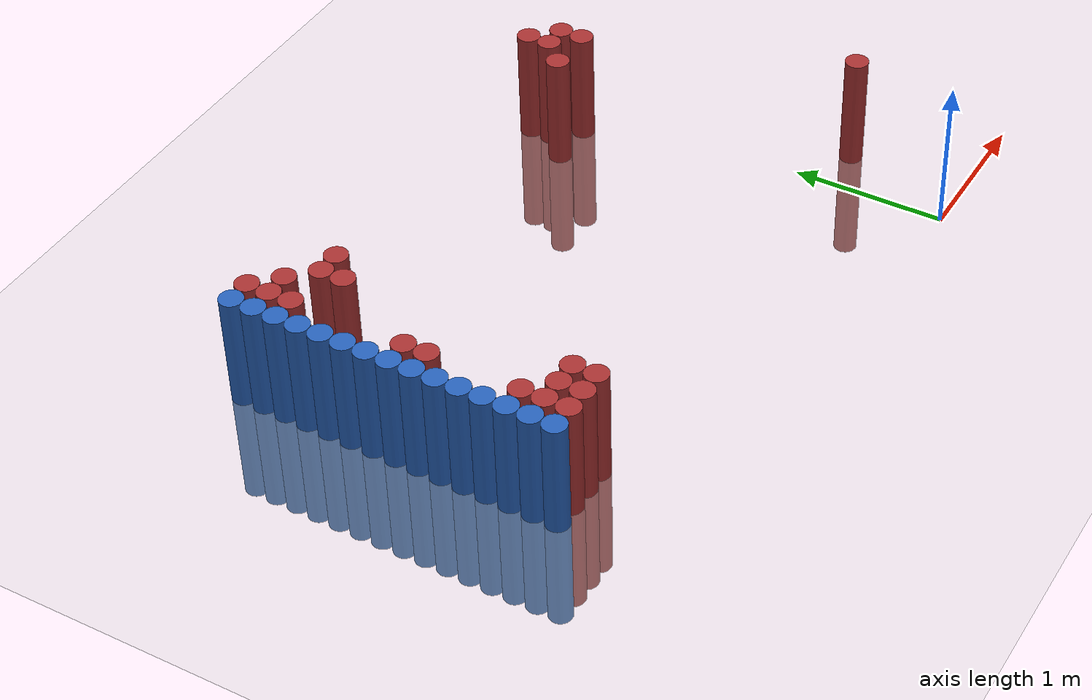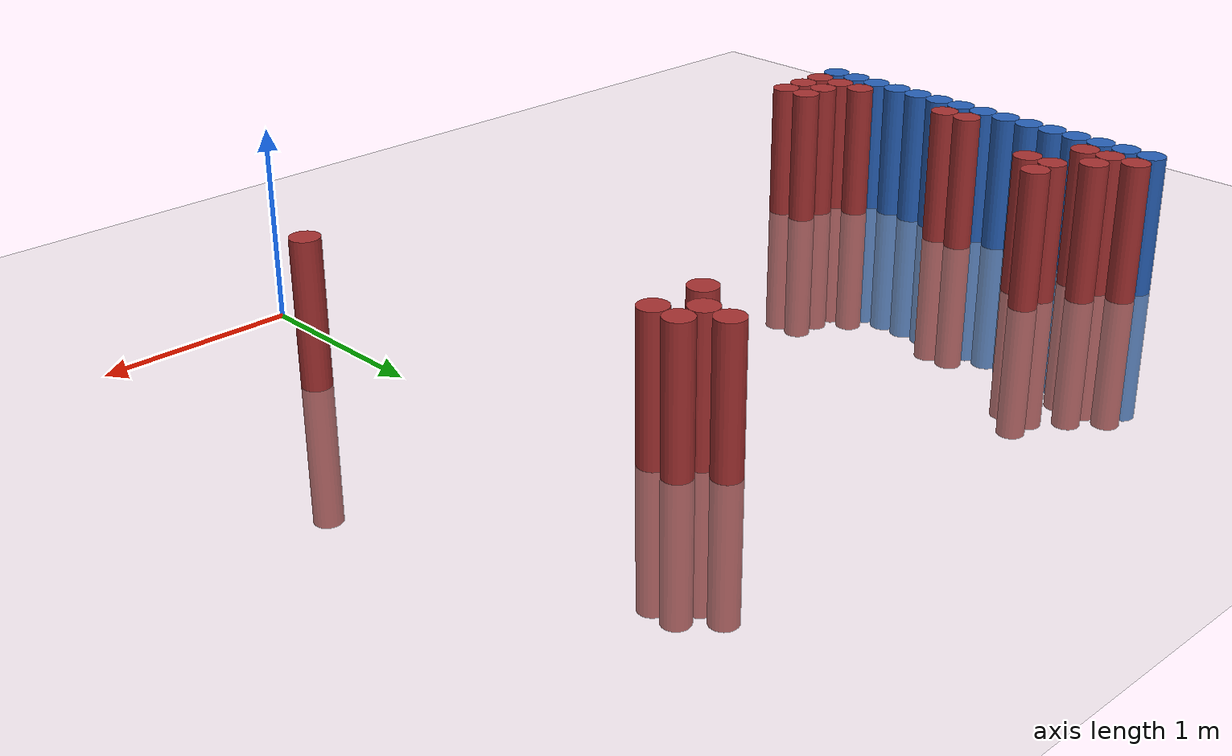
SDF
<sdf version="1.6">
 <world name="default">
  <model name="ground_plane">
   <static>1</static>
   <link name="link">
    <collision name="collision">
     <geometry><plane><normal>0 0 1</normal><size>100 100</size></plane></geometry>
     <surface><friction><ode><mu>100</mu><mu2>50</mu2></ode></friction></surface>
    </collision>
    <visual name="visual">
     <cast_shadows>0</cast_shadows>
     <geometry><plane><normal>0 0 1</normal><size>100 100</size></plane></geometry>
     <material>
      <script><uri>file://media/materials/scripts/gazebo.material</uri><name>Gazebo/Grey</name></script>
     </material>
    </visual>
   </link>
  </model>
  <model name="unit_cylinder_125">
   <static>1</static>
   <pose>-3.425000 0.775000 0.000000 0.000000 0.000000 0.000000</pose>
   <link name="link">
    <inertial>
     <mass>1</mass>
     <inertia><ixx>0.145833</ixx><ixy>0</ixy><ixz>0</ixz><iyy>0.145833</iyy><iyz>0</iyz><izz>0.125</izz></inertia>
    </inertial>
    <collision name="collision">
     <geometry><cylinder><radius>0.075000</radius><length>1.5</length></cylinder></geometry>
    </collision>
    <visual name="visual">
     <geometry><cylinder><radius>0.075000</radius><length>1.5</length></cylinder></geometry>
     <material>
      <ambient>0.152000 0.379000 0.720000 1</ambient>
      <diffuse>0.152000 0.379000 0.720000 1</diffuse>
     </material>
     <material>
      <script><name>Gazebo/Grey</name><uri>file://media/materials/scripts/gazebo.material</uri></script>
     </material>
    </visual>
   </link>
  </model>
  <model name="unit_cylinder_127">
   <static>1</static>
   <pose>-3.425000 0.925000 0.000000 0.000000 0.000000 0.000000</pose>
   <link name="link">
    <inertial>
     <mass>1</mass>
     <inertia><ixx>0.145833</ixx><ixy>0</ixy><ixz>0</ixz><iyy>0.145833</iyy><iyz>0</iyz><izz>0.125</izz></inertia>
    </inertial>
    <collision name="collision">
     <geometry><cylinder><radius>0.075000</radius><length>1.5</length></cylinder></geometry>
    </collision>
    <visual name="visual">
     <geometry><cylinder><radius>0.075000</radius><length>1.5</length></cylinder></geometry>
     <material>
      <ambient>0.152000 0.379000 0.720000 1</ambient>
      <diffuse>0.152000 0.379000 0.720000 1</diffuse>
     </material>
     <material>
      <script><name>Gazebo/Grey</name><uri>file://media/materials/scripts/gazebo.material</uri></script>
     </material>
    </visual>
   </link>
  </model>
  <model name="unit_cylinder_129">
   <static>1</static>
   <pose>-3.425000 1.075000 0.000000 0.000000 0.000000 0.000000</pose>
   <link name="link">
    <inertial>
     <mass>1</mass>
     <inertia><ixx>0.145833</ixx><ixy>0</ixy><ixz>0</ixz><iyy>0.145833</iyy><iyz>0</iyz><izz>0.125</izz></inertia>
    </inertial>
    <collision name="collision">
     <geometry><cylinder><radius>0.075000</radius><length>1.5</length></cylinder></geometry>
    </collision>
    <visual name="visual">
     <geometry><cylinder><radius>0.075000</radius><length>1.5</length></cylinder></geometry>
     <material>
      <ambient>0.152000 0.379000 0.720000 1</ambient>
      <diffuse>0.152000 0.379000 0.720000 1</diffuse>
     </material>
     <material>
      <script><name>Gazebo/Grey</name><uri>file://media/materials/scripts/gazebo.material</uri></script>
     </material>
    </visual>
   </link>
  </model>
  <model name="unit_cylinder_131">
   <static>1</static>
   <pose>-3.425000 1.225000 0.000000 0.000000 0.000000 0.000000</pose>
   <link name="link">
    <inertial>
     <mass>1</mass>
     <inertia><ixx>0.145833</ixx><ixy>0</ixy><ixz>0</ixz><iyy>0.145833</iyy><iyz>0</iyz><izz>0.125</izz></inertia>
    </inertial>
    <collision name="collision">
     <geometry><cylinder><radius>0.075000</radius><length>1.5</length></cylinder></geometry>
    </collision>
    <visual name="visual">
     <geometry><cylinder><radius>0.075000</radius><length>1.5</length></cylinder></geometry>
     <material>
      <ambient>0.152000 0.379000 0.720000 1</ambient>
      <diffuse>0.152000 0.379000 0.720000 1</diffuse>
     </material>
     <material>
      <script><name>Gazebo/Grey</name><uri>file://media/materials/scripts/gazebo.material</uri></script>
     </material>
    </visual>
   </link>
  </model>
  <model name="unit_cylinder_133">
   <static>1</static>
   <pose>-3.425000 1.375000 0.000000 0.000000 0.000000 0.000000</pose>
   <link name="link">
    <inertial>
     <mass>1</mass>
     <inertia><ixx>0.145833</ixx><ixy>0</ixy><ixz>0</ixz><iyy>0.145833</iyy><iyz>0</iyz><izz>0.125</izz></inertia>
    </inertial>
    <collision name="collision">
     <geometry><cylinder><radius>0.075000</radius><length>1.5</length></cylinder></geometry>
    </collision>
    <visual name="visual">
     <geometry><cylinder><radius>0.075000</radius><length>1.5</length></cylinder></geometry>
     <material>
      <ambient>0.152000 0.379000 0.720000 1</ambient>
      <diffuse>0.152000 0.379000 0.720000 1</diffuse>
     </material>
     <material>
      <script><name>Gazebo/Grey</name><uri>file://media/materials/scripts/gazebo.material</uri></script>
     </material>
    </visual>
   </link>
  </model>
  <model name="unit_cylinder_135">
   <static>1</static>
   <pose>-3.425000 1.525000 0.000000 0.000000 0.000000 0.000000</pose>
   <link name="link">
    <inertial>
     <mass>1</mass>
     <inertia><ixx>0.145833</ixx><ixy>0</ixy><ixz>0</ixz><iyy>0.145833</iyy><iyz>0</iyz><izz>0.125</izz></inertia>
    </inertial>
    <collision name="collision">
     <geometry><cylinder><radius>0.075000</radius><length>1.5</length></cylinder></geometry>
    </collision>
    <visual name="visual">
     <geometry><cylinder><radius>0.075000</radius><length>1.5</length></cylinder></geometry>
     <material>
      <ambient>0.152000 0.379000 0.720000 1</ambient>
      <diffuse>0.152000 0.379000 0.720000 1</diffuse>
     </material>
     <material>
      <script><name>Gazebo/Grey</name><uri>file://media/materials/scripts/gazebo.material</uri></script>
     </material>
    </visual>
   </link>
  </model>
  <model name="unit_cylinder_137">
   <static>1</static>
   <pose>-3.425000 1.675000 0.000000 0.000000 0.000000 0.000000</pose>
   <link name="link">
    <inertial>
     <mass>1</mass>
     <inertia><ixx>0.145833</ixx><ixy>0</ixy><ixz>0</ixz><iyy>0.145833</iyy><iyz>0</iyz><izz>0.125</izz></inertia>
    </inertial>
    <collision name="collision">
     <geometry><cylinder><radius>0.075000</radius><length>1.5</length></cylinder></geometry>
    </collision>
    <visual name="visual">
     <geometry><cylinder><radius>0.075000</radius><length>1.5</length></cylinder></geometry>
     <material>
      <ambient>0.152000 0.379000 0.720000 1</ambient>
      <diffuse>0.152000 0.379000 0.720000 1</diffuse>
     </material>
     <material>
      <script><name>Gazebo/Grey</name><uri>file://media/materials/scripts/gazebo.material</uri></script>
     </material>
    </visual>
   </link>
  </model>
  <model name="unit_cylinder_139">
   <static>1</static>
   <pose>-3.425000 1.825000 0.000000 0.000000 0.000000 0.000000</pose>
   <link name="link">
    <inertial>
     <mass>1</mass>
     <inertia><ixx>0.145833</ixx><ixy>0</ixy><ixz>0</ixz><iyy>0.145833</iyy><iyz>0</iyz><izz>0.125</izz></inertia>
    </inertial>
    <collision name="collision">
     <geometry><cylinder><radius>0.075000</radius><length>1.5</length></cylinder></geometry>
    </collision>
    <visual name="visual">
     <geometry><cylinder><radius>0.075000</radius><length>1.5</length></cylinder></geometry>
     <material>
      <ambient>0.152000 0.379000 0.720000 1</ambient>
      <diffuse>0.152000 0.379000 0.720000 1</diffuse>
     </material>
     <material>
      <script><name>Gazebo/Grey</name><uri>file://media/materials/scripts/gazebo.material</uri></script>
     </material>
    </visual>
   </link>
  </model>
  <model name="unit_cylinder_141">
   <static>1</static>
   <pose>-3.425000 1.975000 0.000000 0.000000 0.000000 0.000000</pose>
   <link name="link">
    <inertial>
     <mass>1</mass>
     <inertia><ixx>0.145833</ixx><ixy>0</ixy><ixz>0</ixz><iyy>0.145833</iyy><iyz>0</iyz><izz>0.125</izz></inertia>
    </inertial>
    <collision name="collision">
     <geometry><cylinder><radius>0.075000</radius><length>1.5</length></cylinder></geometry>
    </collision>
    <visual name="visual">
     <geometry><cylinder><radius>0.075000</radius><length>1.5</length></cylinder></geometry>
     <material>
      <ambient>0.152000 0.379000 0.720000 1</ambient>
      <diffuse>0.152000 0.379000 0.720000 1</diffuse>
     </material>
     <material>
      <script><name>Gazebo/Grey</name><uri>file://media/materials/scripts/gazebo.material</uri></script>
     </material>
    </visual>
   </link>
  </model>
  <model name="unit_cylinder_143">
   <static>1</static>
   <pose>-3.425000 2.125000 0.000000 0.000000 0.000000 0.000000</pose>
   <link name="link">
    <inertial>
     <mass>1</mass>
     <inertia><ixx>0.145833</ixx><ixy>0</ixy><ixz>0</ixz><iyy>0.145833</iyy><iyz>0</iyz><izz>0.125</izz></inertia>
    </inertial>
    <collision name="collision">
     <geometry><cylinder><radius>0.075000</radius><length>1.5</length></cylinder></geometry>
    </collision>
    <visual name="visual">
     <geometry><cylinder><radius>0.075000</radius><length>1.5</length></cylinder></geometry>
     <material>
      <ambient>0.152000 0.379000 0.720000 1</ambient>
      <diffuse>0.152000 0.379000 0.720000 1</diffuse>
     </material>
     <material>
      <script><name>Gazebo/Grey</name><uri>file://media/materials/scripts/gazebo.material</uri></script>
     </material>
    </visual>
   </link>
  </model>
  <model name="unit_cylinder_145">
   <static>1</static>
   <pose>-3.425000 2.275000 0.000000 0.000000 0.000000 0.000000</pose>
   <link name="link">
    <inertial>
     <mass>1</mass>
     <inertia><ixx>0.145833</ixx><ixy>0</ixy><ixz>0</ixz><iyy>0.145833</iyy><iyz>0</iyz><izz>0.125</izz></inertia>
    </inertial>
    <collision name="collision">
     <geometry><cylinder><radius>0.075000</radius><length>1.5</length></cylinder></geometry>
    </collision>
    <visual name="visual">
     <geometry><cylinder><radius>0.075000</radius><length>1.5</length></cylinder></geometry>
     <material>
      <ambient>0.152000 0.379000 0.720000 1</ambient>
      <diffuse>0.152000 0.379000 0.720000 1</diffuse>
     </material>
     <material>
      <script><name>Gazebo/Grey</name><uri>file://media/materials/scripts/gazebo.material</uri></script>
     </material>
    </visual>
   </link>
  </model>
  <model name="unit_cylinder_147">
   <static>1</static>
   <pose>-3.425000 2.425000 0.000000 0.000000 0.000000 0.000000</pose>
   <link name="link">
    <inertial>
     <mass>1</mass>
     <inertia><ixx>0.145833</ixx><ixy>0</ixy><ixz>0</ixz><iyy>0.145833</iyy><iyz>0</iyz><izz>0.125</izz></inertia>
    </inertial>
    <collision name="collision">
     <geometry><cylinder><radius>0.075000</radius><length>1.5</length></cylinder></geometry>
    </collision>
    <visual name="visual">
     <geometry><cylinder><radius>0.075000</radius><length>1.5</length></cylinder></geometry>
     <material>
      <ambient>0.152000 0.379000 0.720000 1</ambient>
      <diffuse>0.152000 0.379000 0.720000 1</diffuse>
     </material>
     <material>
      <script><name>Gazebo/Grey</name><uri>file://media/materials/scripts/gazebo.material</uri></script>
     </material>
    </visual>
   </link>
  </model>
  <model name="unit_cylinder_149">
   <static>1</static>
   <pose>-3.425000 2.575000 0.000000 0.000000 0.000000 0.000000</pose>
   <link name="link">
    <inertial>
     <mass>1</mass>
     <inertia><ixx>0.145833</ixx><ixy>0</ixy><ixz>0</ixz><iyy>0.145833</iyy><iyz>0</iyz><izz>0.125</izz></inertia>
    </inertial>
    <collision name="collision">
     <geometry><cylinder><radius>0.075000</radius><length>1.5</length></cylinder></geometry>
    </collision>
    <visual name="visual">
     <geometry><cylinder><radius>0.075000</radius><length>1.5</length></cylinder></geometry>
     <material>
      <ambient>0.152000 0.379000 0.720000 1</ambient>
      <diffuse>0.152000 0.379000 0.720000 1</diffuse>
     </material>
     <material>
      <script><name>Gazebo/Grey</name><uri>file://media/materials/scripts/gazebo.material</uri></script>
     </material>
    </visual>
   </link>
  </model>
  <model name="unit_cylinder_151">
   <static>1</static>
   <pose>-3.425000 2.725000 0.000000 0.000000 0.000000 0.000000</pose>
   <link name="link">
    <inertial>
     <mass>1</mass>
     <inertia><ixx>0.145833</ixx><ixy>0</ixy><ixz>0</ixz><iyy>0.145833</iyy><iyz>0</iyz><izz>0.125</izz></inertia>
    </inertial>
    <collision name="collision">
     <geometry><cylinder><radius>0.075000</radius><length>1.5</length></cylinder></geometry>
    </collision>
    <visual name="visual">
     <geometry><cylinder><radius>0.075000</radius><length>1.5</length></cylinder></geometry>
     <material>
      <ambient>0.152000 0.379000 0.720000 1</ambient>
      <diffuse>0.152000 0.379000 0.720000 1</diffuse>
     </material>
     <material>
      <script><name>Gazebo/Grey</name><uri>file://media/materials/scripts/gazebo.material</uri></script>
     </material>
    </visual>
   </link>
  </model>
  <model name="unit_cylinder_153">
   <static>1</static>
   <pose>-3.425000 2.875000 0.000000 0.000000 0.000000 0.000000</pose>
   <link name="link">
    <inertial>
     <mass>1</mass>
     <inertia><ixx>0.145833</ixx><ixy>0</ixy><ixz>0</ixz><iyy>0.145833</iyy><iyz>0</iyz><izz>0.125</izz></inertia>
    </inertial>
    <collision name="collision">
     <geometry><cylinder><radius>0.075000</radius><length>1.5</length></cylinder></geometry>
    </collision>
    <visual name="visual">
     <geometry><cylinder><radius>0.075000</radius><length>1.5</length></cylinder></geometry>
     <material>
      <ambient>0.152000 0.379000 0.720000 1</ambient>
      <diffuse>0.152000 0.379000 0.720000 1</diffuse>
     </material>
     <material>
      <script><name>Gazebo/Grey</name><uri>file://media/materials/scripts/gazebo.material</uri></script>
     </material>
    </visual>
   </link>
  </model>
  <model name="unit_cylinder_226">
   <static>1</static>
   <pose>-3.425000 0.775000 0.000000 0.000000 0.000000 0.000000</pose>
   <link name="link">
    <inertial>
     <mass>1</mass>
     <inertia><ixx>0.145833</ixx><ixy>0</ixy><ixz>0</ixz><iyy>0.145833</iyy><iyz>0</iyz><izz>0.125</izz></inertia>
    </inertial>
    <collision name="collision">
     <geometry><cylinder><radius>0.075000</radius><length>1.5</length></cylinder></geometry>
    </collision>
    <visual name="visual">
     <geometry><cylinder><radius>0.075000</radius><length>1.5</length></cylinder></geometry>
     <material>
      <ambient>0.152000 0.379000 0.720000 1</ambient>
      <diffuse>0.152000 0.379000 0.720000 1</diffuse>
     </material>
     <material>
      <script><name>Gazebo/Grey</name><uri>file://media/materials/scripts/gazebo.material</uri></script>
     </material>
    </visual>
   </link>
  </model>
  <model name="unit_cylinder_227">
   <static>1</static>
   <pose>-3.425000 0.925000 0.000000 0.000000 0.000000 0.000000</pose>
   <link name="link">
    <inertial>
     <mass>1</mass>
     <inertia><ixx>0.145833</ixx><ixy>0</ixy><ixz>0</ixz><iyy>0.145833</iyy><iyz>0</iyz><izz>0.125</izz></inertia>
    </inertial>
    <collision name="collision">
     <geometry><cylinder><radius>0.075000</radius><length>1.5</length></cylinder></geometry>
    </collision>
    <visual name="visual">
     <geometry><cylinder><radius>0.075000</radius><length>1.5</length></cylinder></geometry>
     <material>
      <ambient>0.152000 0.379000 0.720000 1</ambient>
      <diffuse>0.152000 0.379000 0.720000 1</diffuse>
     </material>
     <material>
      <script><name>Gazebo/Grey</name><uri>file://media/materials/scripts/gazebo.material</uri></script>
     </material>
    </visual>
   </link>
  </model>
  <model name="unit_cylinder_228">
   <static>1</static>
   <pose>-3.425000 1.075000 0.000000 0.000000 0.000000 0.000000</pose>
   <link name="link">
    <inertial>
     <mass>1</mass>
     <inertia><ixx>0.145833</ixx><ixy>0</ixy><ixz>0</ixz><iyy>0.145833</iyy><iyz>0</iyz><izz>0.125</izz></inertia>
    </inertial>
    <collision name="collision">
     <geometry><cylinder><radius>0.075000</radius><length>1.5</length></cylinder></geometry>
    </collision>
    <visual name="visual">
     <geometry><cylinder><radius>0.075000</radius><length>1.5</length></cylinder></geometry>
     <material>
      <ambient>0.152000 0.379000 0.720000 1</ambient>
      <diffuse>0.152000 0.379000 0.720000 1</diffuse>
     </material>
     <material>
      <script><name>Gazebo/Grey</name><uri>file://media/materials/scripts/gazebo.material</uri></script>
     </material>
    </visual>
   </link>
  </model>
  <model name="unit_cylinder_229">
   <static>1</static>
   <pose>-3.425000 1.225000 0.000000 0.000000 0.000000 0.000000</pose>
   <link name="link">
    <inertial>
     <mass>1</mass>
     <inertia><ixx>0.145833</ixx><ixy>0</ixy><ixz>0</ixz><iyy>0.145833</iyy><iyz>0</iyz><izz>0.125</izz></inertia>
    </inertial>
    <collision name="collision">
     <geometry><cylinder><radius>0.075000</radius><length>1.5</length></cylinder></geometry>
    </collision>
    <visual name="visual">
     <geometry><cylinder><radius>0.075000</radius><length>1.5</length></cylinder></geometry>
     <material>
      <ambient>0.152000 0.379000 0.720000 1</ambient>
      <diffuse>0.152000 0.379000 0.720000 1</diffuse>
     </material>
     <material>
      <script><name>Gazebo/Grey</name><uri>file://media/materials/scripts/gazebo.material</uri></script>
     </material>
    </visual>
   </link>
  </model>
  <model name="unit_cylinder_230">
   <static>1</static>
   <pose>-3.425000 1.375000 0.000000 0.000000 0.000000 0.000000</pose>
   <link name="link">
    <inertial>
     <mass>1</mass>
     <inertia><ixx>0.145833</ixx><ixy>0</ixy><ixz>0</ixz><iyy>0.145833</iyy><iyz>0</iyz><izz>0.125</izz></inertia>
    </inertial>
    <collision name="collision">
     <geometry><cylinder><radius>0.075000</radius><length>1.5</length></cylinder></geometry>
    </collision>
    <visual name="visual">
     <geometry><cylinder><radius>0.075000</radius><length>1.5</length></cylinder></geometry>
     <material>
      <ambient>0.152000 0.379000 0.720000 1</ambient>
      <diffuse>0.152000 0.379000 0.720000 1</diffuse>
     </material>
     <material>
      <script><name>Gazebo/Grey</name><uri>file://media/materials/scripts/gazebo.material</uri></script>
     </material>
    </visual>
   </link>
  </model>
  <model name="unit_cylinder_231">
   <static>1</static>
   <pose>-3.425000 1.525000 0.000000 0.000000 0.000000 0.000000</pose>
   <link name="link">
    <inertial>
     <mass>1</mass>
     <inertia><ixx>0.145833</ixx><ixy>0</ixy><ixz>0</ixz><iyy>0.145833</iyy><iyz>0</iyz><izz>0.125</izz></inertia>
    </inertial>
    <collision name="collision">
     <geometry><cylinder><radius>0.075000</radius><length>1.5</length></cylinder></geometry>
    </collision>
    <visual name="visual">
     <geometry><cylinder><radius>0.075000</radius><length>1.5</length></cylinder></geometry>
     <material>
      <ambient>0.152000 0.379000 0.720000 1</ambient>
      <diffuse>0.152000 0.379000 0.720000 1</diffuse>
     </material>
     <material>
      <script><name>Gazebo/Grey</name><uri>file://media/materials/scripts/gazebo.material</uri></script>
     </material>
    </visual>
   </link>
  </model>
  <model name="unit_cylinder_232">
   <static>1</static>
   <pose>-3.425000 1.675000 0.000000 0.000000 0.000000 0.000000</pose>
   <link name="link">
    <inertial>
     <mass>1</mass>
     <inertia><ixx>0.145833</ixx><ixy>0</ixy><ixz>0</ixz><iyy>0.145833</iyy><iyz>0</iyz><izz>0.125</izz></inertia>
    </inertial>
    <collision name="collision">
     <geometry><cylinder><radius>0.075000</radius><length>1.5</length></cylinder></geometry>
    </collision>
    <visual name="visual">
     <geometry><cylinder><radius>0.075000</radius><length>1.5</length></cylinder></geometry>
     <material>
      <ambient>0.152000 0.379000 0.720000 1</ambient>
      <diffuse>0.152000 0.379000 0.720000 1</diffuse>
     </material>
     <material>
      <script><name>Gazebo/Grey</name><uri>file://media/materials/scripts/gazebo.material</uri></script>
     </material>
    </visual>
   </link>
  </model>
  <model name="unit_cylinder_233">
   <static>1</static>
   <pose>-3.425000 1.825000 0.000000 0.000000 0.000000 0.000000</pose>
   <link name="link">
    <inertial>
     <mass>1</mass>
     <inertia><ixx>0.145833</ixx><ixy>0</ixy><ixz>0</ixz><iyy>0.145833</iyy><iyz>0</iyz><izz>0.125</izz></inertia>
    </inertial>
    <collision name="collision">
     <geometry><cylinder><radius>0.075000</radius><length>1.5</length></cylinder></geometry>
    </collision>
    <visual name="visual">
     <geometry><cylinder><radius>0.075000</radius><length>1.5</length></cylinder></geometry>
     <material>
      <ambient>0.152000 0.379000 0.720000 1</ambient>
      <diffuse>0.152000 0.379000 0.720000 1</diffuse>
     </material>
     <material>
      <script><name>Gazebo/Grey</name><uri>file://media/materials/scripts/gazebo.material</uri></script>
     </material>
    </visual>
   </link>
  </model>
  <model name="unit_cylinder_234">
   <static>1</static>
   <pose>-3.425000 1.975000 0.000000 0.000000 0.000000 0.000000</pose>
   <link name="link">
    <inertial>
     <mass>1</mass>
     <inertia><ixx>0.145833</ixx><ixy>0</ixy><ixz>0</ixz><iyy>0.145833</iyy><iyz>0</iyz><izz>0.125</izz></inertia>
    </inertial>
    <collision name="collision">
     <geometry><cylinder><radius>0.075000</radius><length>1.5</length></cylinder></geometry>
    </collision>
    <visual name="visual">
     <geometry><cylinder><radius>0.075000</radius><length>1.5</length></cylinder></geometry>
     <material>
      <ambient>0.152000 0.379000 0.720000 1</ambient>
      <diffuse>0.152000 0.379000 0.720000 1</diffuse>
     </material>
     <material>
      <script><name>Gazebo/Grey</name><uri>file://media/materials/scripts/gazebo.material</uri></script>
     </material>
    </visual>
   </link>
  </model>
  <model name="unit_cylinder_235">
   <static>1</static>
   <pose>-3.425000 2.125000 0.000000 0.000000 0.000000 0.000000</pose>
   <link name="link">
    <inertial>
     <mass>1</mass>
     <inertia><ixx>0.145833</ixx><ixy>0</ixy><ixz>0</ixz><iyy>0.145833</iyy><iyz>0</iyz><izz>0.125</izz></inertia>
    </inertial>
    <collision name="collision">
     <geometry><cylinder><radius>0.075000</radius><length>1.5</length></cylinder></geometry>
    </collision>
    <visual name="visual">
     <geometry><cylinder><radius>0.075000</radius><length>1.5</length></cylinder></geometry>
     <material>
      <ambient>0.152000 0.379000 0.720000 1</ambient>
      <diffuse>0.152000 0.379000 0.720000 1</diffuse>
     </material>
     <material>
      <script><name>Gazebo/Grey</name><uri>file://media/materials/scripts/gazebo.material</uri></script>
     </material>
    </visual>
   </link>
  </model>
  <model name="unit_cylinder_236">
   <static>1</static>
   <pose>-3.425000 2.275000 0.000000 0.000000 0.000000 0.000000</pose>
   <link name="link">
    <inertial>
     <mass>1</mass>
     <inertia><ixx>0.145833</ixx><ixy>0</ixy><ixz>0</ixz><iyy>0.145833</iyy><iyz>0</iyz><izz>0.125</izz></inertia>
    </inertial>
    <collision name="collision">
     <geometry><cylinder><radius>0.075000</radius><length>1.5</length></cylinder></geometry>
    </collision>
    <visual name="visual">
     <geometry><cylinder><radius>0.075000</radius><length>1.5</length></cylinder></geometry>
     <material>
      <ambient>0.152000 0.379000 0.720000 1</ambient>
      <diffuse>0.152000 0.379000 0.720000 1</diffuse>
     </material>
     <material>
      <script><name>Gazebo/Grey</name><uri>file://media/materials/scripts/gazebo.material</uri></script>
     </material>
    </visual>
   </link>
  </model>
  <model name="unit_cylinder_237">
   <static>1</static>
   <pose>-3.425000 2.425000 0.000000 0.000000 0.000000 0.000000</pose>
   <link name="link">
    <inertial>
     <mass>1</mass>
     <inertia><ixx>0.145833</ixx><ixy>0</ixy><ixz>0</ixz><iyy>0.145833</iyy><iyz>0</iyz><izz>0.125</izz></inertia>
    </inertial>
    <collision name="collision">
     <geometry><cylinder><radius>0.075000</radius><length>1.5</length></cylinder></geometry>
    </collision>
    <visual name="visual">
     <geometry><cylinder><radius>0.075000</radius><length>1.5</length></cylinder></geometry>
     <material>
      <ambient>0.152000 0.379000 0.720000 1</ambient>
      <diffuse>0.152000 0.379000 0.720000 1</diffuse>
     </material>
     <material>
      <script><name>Gazebo/Grey</name><uri>file://media/materials/scripts/gazebo.material</uri></script>
     </material>
    </visual>
   </link>
  </model>
  <model name="unit_cylinder_238">
   <static>1</static>
   <pose>-3.425000 2.575000 0.000000 0.000000 0.000000 0.000000</pose>
   <link name="link">
    <inertial>
     <mass>1</mass>
     <inertia><ixx>0.145833</ixx><ixy>0</ixy><ixz>0</ixz><iyy>0.145833</iyy><iyz>0</iyz><izz>0.125</izz></inertia>
    </inertial>
    <collision name="collision">
     <geometry><cylinder><radius>0.075000</radius><length>1.5</length></cylinder></geometry>
    </collision>
    <visual name="visual">
     <geometry><cylinder><radius>0.075000</radius><length>1.5</length></cylinder></geometry>
     <material>
      <ambient>0.152000 0.379000 0.720000 1</ambient>
      <diffuse>0.152000 0.379000 0.720000 1</diffuse>
     </material>
     <material>
      <script><name>Gazebo/Grey</name><uri>file://media/materials/scripts/gazebo.material</uri></script>
     </material>
    </visual>
   </link>
  </model>
  <model name="unit_cylinder_239">
   <static>1</static>
   <pose>-3.425000 2.725000 0.000000 0.000000 0.000000 0.000000</pose>
   <link name="link">
    <inertial>
     <mass>1</mass>
     <inertia><ixx>0.145833</ixx><ixy>0</ixy><ixz>0</ixz><iyy>0.145833</iyy><iyz>0</iyz><izz>0.125</izz></inertia>
    </inertial>
    <collision name="collision">
     <geometry><cylinder><radius>0.075000</radius><length>1.5</length></cylinder></geometry>
    </collision>
    <visual name="visual">
     <geometry><cylinder><radius>0.075000</radius><length>1.5</length></cylinder></geometry>
     <material>
      <ambient>0.152000 0.379000 0.720000 1</ambient>
      <diffuse>0.152000 0.379000 0.720000 1</diffuse>
     </material>
     <material>
      <script><name>Gazebo/Grey</name><uri>file://media/materials/scripts/gazebo.material</uri></script>
     </material>
    </visual>
   </link>
  </model>
  <model name="unit_cylinder_240">
   <static>1</static>
   <pose>-3.425000 2.875000 0.000000 0.000000 0.000000 0.000000</pose>
   <link name="link">
    <inertial>
     <mass>1</mass>
     <inertia><ixx>0.145833</ixx><ixy>0</ixy><ixz>0</ixz><iyy>0.145833</iyy><iyz>0</iyz><izz>0.125</izz></inertia>
    </inertial>
    <collision name="collision">
     <geometry><cylinder><radius>0.075000</radius><length>1.5</length></cylinder></geometry>
    </collision>
    <visual name="visual">
     <geometry><cylinder><radius>0.075000</radius><length>1.5</length></cylinder></geometry>
     <material>
      <ambient>0.152000 0.379000 0.720000 1</ambient>
      <diffuse>0.152000 0.379000 0.720000 1</diffuse>
     </material>
     <material>
      <script><name>Gazebo/Grey</name><uri>file://media/materials/scripts/gazebo.material</uri></script>
     </material>
    </visual>
   </link>
  </model>
  <model name="unit_cylinder_263">
   <static>1</static>
   <pose>-3.275000 0.775000 0.000000 0.000000 0.000000 0.000000</pose>
   <link name="link">
    <inertial>
     <mass>1</mass>
     <inertia><ixx>0.145833</ixx><ixy>0</ixy><ixz>0</ixz><iyy>0.145833</iyy><iyz>0</iyz><izz>0.125</izz></inertia>
    </inertial>
    <collision name="collision">
     <geometry><cylinder><radius>0.075000</radius><length>1.5</length></cylinder></geometry>
    </collision>
    <visual name="visual">
     <geometry><cylinder><radius>0.075000</radius><length>1.5</length></cylinder></geometry>
     <material>
      <ambient>0.648000 0.192000 0.192000 1</ambient>
      <diffuse>0.648000 0.192000 0.192000 1</diffuse>
     </material>
     <material>
      <script><name>Gazebo/Grey</name><uri>file://media/materials/scripts/gazebo.material</uri></script>
     </material>
    </visual>
   </link>
  </model>
  <model name="unit_cylinder_264">
   <static>1</static>
   <pose>-3.275000 0.925000 0.000000 0.000000 0.000000 0.000000</pose>
   <link name="link">
    <inertial>
     <mass>1</mass>
     <inertia><ixx>0.145833</ixx><ixy>0</ixy><ixz>0</ixz><iyy>0.145833</iyy><iyz>0</iyz><izz>0.125</izz></inertia>
    </inertial>
    <collision name="collision">
     <geometry><cylinder><radius>0.075000</radius><length>1.5</length></cylinder></geometry>
    </collision>
    <visual name="visual">
     <geometry><cylinder><radius>0.075000</radius><length>1.5</length></cylinder></geometry>
     <material>
      <ambient>0.648000 0.192000 0.192000 1</ambient>
      <diffuse>0.648000 0.192000 0.192000 1</diffuse>
     </material>
     <material>
      <script><name>Gazebo/Grey</name><uri>file://media/materials/scripts/gazebo.material</uri></script>
     </material>
    </visual>
   </link>
  </model>
  <model name="unit_cylinder_265">
   <static>1</static>
   <pose>-3.275000 1.075000 0.000000 0.000000 0.000000 0.000000</pose>
   <link name="link">
    <inertial>
     <mass>1</mass>
     <inertia><ixx>0.145833</ixx><ixy>0</ixy><ixz>0</ixz><iyy>0.145833</iyy><iyz>0</iyz><izz>0.125</izz></inertia>
    </inertial>
    <collision name="collision">
     <geometry><cylinder><radius>0.075000</radius><length>1.5</length></cylinder></geometry>
    </collision>
    <visual name="visual">
     <geometry><cylinder><radius>0.075000</radius><length>1.5</length></cylinder></geometry>
     <material>
      <ambient>0.648000 0.192000 0.192000 1</ambient>
      <diffuse>0.648000 0.192000 0.192000 1</diffuse>
     </material>
     <material>
      <script><name>Gazebo/Grey</name><uri>file://media/materials/scripts/gazebo.material</uri></script>
     </material>
    </visual>
   </link>
  </model>
  <model name="unit_cylinder_266">
   <static>1</static>
   <pose>-3.275000 1.675000 0.000000 0.000000 0.000000 0.000000</pose>
   <link name="link">
    <inertial>
     <mass>1</mass>
     <inertia><ixx>0.145833</ixx><ixy>0</ixy><ixz>0</ixz><iyy>0.145833</iyy><iyz>0</iyz><izz>0.125</izz></inertia>
    </inertial>
    <collision name="collision">
     <geometry><cylinder><radius>0.075000</radius><length>1.5</length></cylinder></geometry>
    </collision>
    <visual name="visual">
     <geometry><cylinder><radius>0.075000</radius><length>1.5</length></cylinder></geometry>
     <material>
      <ambient>0.648000 0.192000 0.192000 1</ambient>
      <diffuse>0.648000 0.192000 0.192000 1</diffuse>
     </material>
     <material>
      <script><name>Gazebo/Grey</name><uri>file://media/materials/scripts/gazebo.material</uri></script>
     </material>
    </visual>
   </link>
  </model>
  <model name="unit_cylinder_267">
   <static>1</static>
   <pose>-3.275000 1.825000 0.000000 0.000000 0.000000 0.000000</pose>
   <link name="link">
    <inertial>
     <mass>1</mass>
     <inertia><ixx>0.145833</ixx><ixy>0</ixy><ixz>0</ixz><iyy>0.145833</iyy><iyz>0</iyz><izz>0.125</izz></inertia>
    </inertial>
    <collision name="collision">
     <geometry><cylinder><radius>0.075000</radius><length>1.5</length></cylinder></geometry>
    </collision>
    <visual name="visual">
     <geometry><cylinder><radius>0.075000</radius><length>1.5</length></cylinder></geometry>
     <material>
      <ambient>0.648000 0.192000 0.192000 1</ambient>
      <diffuse>0.648000 0.192000 0.192000 1</diffuse>
     </material>
     <material>
      <script><name>Gazebo/Grey</name><uri>file://media/materials/scripts/gazebo.material</uri></script>
     </material>
    </visual>
   </link>
  </model>
  <model name="unit_cylinder_268">
   <static>1</static>
   <pose>-3.275000 2.575000 0.000000 0.000000 0.000000 0.000000</pose>
   <link name="link">
    <inertial>
     <mass>1</mass>
     <inertia><ixx>0.145833</ixx><ixy>0</ixy><ixz>0</ixz><iyy>0.145833</iyy><iyz>0</iyz><izz>0.125</izz></inertia>
    </inertial>
    <collision name="collision">
     <geometry><cylinder><radius>0.075000</radius><length>1.5</length></cylinder></geometry>
    </collision>
    <visual name="visual">
     <geometry><cylinder><radius>0.075000</radius><length>1.5</length></cylinder></geometry>
     <material>
      <ambient>0.648000 0.192000 0.192000 1</ambient>
      <diffuse>0.648000 0.192000 0.192000 1</diffuse>
     </material>
     <material>
      <script><name>Gazebo/Grey</name><uri>file://media/materials/scripts/gazebo.material</uri></script>
     </material>
    </visual>
   </link>
  </model>
  <model name="unit_cylinder_269">
   <static>1</static>
   <pose>-3.275000 2.725000 0.000000 0.000000 0.000000 0.000000</pose>
   <link name="link">
    <inertial>
     <mass>1</mass>
     <inertia><ixx>0.145833</ixx><ixy>0</ixy><ixz>0</ixz><iyy>0.145833</iyy><iyz>0</iyz><izz>0.125</izz></inertia>
    </inertial>
    <collision name="collision">
     <geometry><cylinder><radius>0.075000</radius><length>1.5</length></cylinder></geometry>
    </collision>
    <visual name="visual">
     <geometry><cylinder><radius>0.075000</radius><length>1.5</length></cylinder></geometry>
     <material>
      <ambient>0.648000 0.192000 0.192000 1</ambient>
      <diffuse>0.648000 0.192000 0.192000 1</diffuse>
     </material>
     <material>
      <script><name>Gazebo/Grey</name><uri>file://media/materials/scripts/gazebo.material</uri></script>
     </material>
    </visual>
   </link>
  </model>
  <model name="unit_cylinder_270">
   <static>1</static>
   <pose>-3.275000 2.875000 0.000000 0.000000 0.000000 0.000000</pose>
   <link name="link">
    <inertial>
     <mass>1</mass>
     <inertia><ixx>0.145833</ixx><ixy>0</ixy><ixz>0</ixz><iyy>0.145833</iyy><iyz>0</iyz><izz>0.125</izz></inertia>
    </inertial>
    <collision name="collision">
     <geometry><cylinder><radius>0.075000</radius><length>1.5</length></cylinder></geometry>
    </collision>
    <visual name="visual">
     <geometry><cylinder><radius>0.075000</radius><length>1.5</length></cylinder></geometry>
     <material>
      <ambient>0.648000 0.192000 0.192000 1</ambient>
      <diffuse>0.648000 0.192000 0.192000 1</diffuse>
     </material>
     <material>
      <script><name>Gazebo/Grey</name><uri>file://media/materials/scripts/gazebo.material</uri></script>
     </material>
    </visual>
   </link>
  </model>
  <model name="unit_cylinder_284">
   <static>1</static>
   <pose>-3.125000 0.775000 0.000000 0.000000 0.000000 0.000000</pose>
   <link name="link">
    <inertial>
     <mass>1</mass>
     <inertia><ixx>0.145833</ixx><ixy>0</ixy><ixz>0</ixz><iyy>0.145833</iyy><iyz>0</iyz><izz>0.125</izz></inertia>
    </inertial>
    <collision name="collision">
     <geometry><cylinder><radius>0.075000</radius><length>1.5</length></cylinder></geometry>
    </collision>
    <visual name="visual">
     <geometry><cylinder><radius>0.075000</radius><length>1.5</length></cylinder></geometry>
     <material>
      <ambient>0.648000 0.192000 0.192000 1</ambient>
      <diffuse>0.648000 0.192000 0.192000 1</diffuse>
     </material>
     <material>
      <script><name>Gazebo/Grey</name><uri>file://media/materials/scripts/gazebo.material</uri></script>
     </material>
    </visual>
   </link>
  </model>
  <model name="unit_cylinder_285">
   <static>1</static>
   <pose>-3.125000 0.925000 0.000000 0.000000 0.000000 0.000000</pose>
   <link name="link">
    <inertial>
     <mass>1</mass>
     <inertia><ixx>0.145833</ixx><ixy>0</ixy><ixz>0</ixz><iyy>0.145833</iyy><iyz>0</iyz><izz>0.125</izz></inertia>
    </inertial>
    <collision name="collision">
     <geometry><cylinder><radius>0.075000</radius><length>1.5</length></cylinder></geometry>
    </collision>
    <visual name="visual">
     <geometry><cylinder><radius>0.075000</radius><length>1.5</length></cylinder></geometry>
     <material>
      <ambient>0.648000 0.192000 0.192000 1</ambient>
      <diffuse>0.648000 0.192000 0.192000 1</diffuse>
     </material>
     <material>
      <script><name>Gazebo/Grey</name><uri>file://media/materials/scripts/gazebo.material</uri></script>
     </material>
    </visual>
   </link>
  </model>
  <model name="unit_cylinder_286">
   <static>1</static>
   <pose>-3.125000 2.725000 0.000000 0.000000 0.000000 0.000000</pose>
   <link name="link">
    <inertial>
     <mass>1</mass>
     <inertia><ixx>0.145833</ixx><ixy>0</ixy><ixz>0</ixz><iyy>0.145833</iyy><iyz>0</iyz><izz>0.125</izz></inertia>
    </inertial>
    <collision name="collision">
     <geometry><cylinder><radius>0.075000</radius><length>1.5</length></cylinder></geometry>
    </collision>
    <visual name="visual">
     <geometry><cylinder><radius>0.075000</radius><length>1.5</length></cylinder></geometry>
     <material>
      <ambient>0.648000 0.192000 0.192000 1</ambient>
      <diffuse>0.648000 0.192000 0.192000 1</diffuse>
     </material>
     <material>
      <script><name>Gazebo/Grey</name><uri>file://media/materials/scripts/gazebo.material</uri></script>
     </material>
    </visual>
   </link>
  </model>
  <model name="unit_cylinder_295">
   <static>1</static>
   <pose>-2.975000 0.775000 0.000000 0.000000 0.000000 0.000000</pose>
   <link name="link">
    <inertial>
     <mass>1</mass>
     <inertia><ixx>0.145833</ixx><ixy>0</ixy><ixz>0</ixz><iyy>0.145833</iyy><iyz>0</iyz><izz>0.125</izz></inertia>
    </inertial>
    <collision name="collision">
     <geometry><cylinder><radius>0.075000</radius><length>1.5</length></cylinder></geometry>
    </collision>
    <visual name="visual">
     <geometry><cylinder><radius>0.075000</radius><length>1.5</length></cylinder></geometry>
     <material>
      <ambient>0.648000 0.192000 0.192000 1</ambient>
      <diffuse>0.648000 0.192000 0.192000 1</diffuse>
     </material>
     <material>
      <script><name>Gazebo/Grey</name><uri>file://media/materials/scripts/gazebo.material</uri></script>
     </material>
    </visual>
   </link>
  </model>
  <model name="unit_cylinder_296">
   <static>1</static>
   <pose>-2.975000 0.925000 0.000000 0.000000 0.000000 0.000000</pose>
   <link name="link">
    <inertial>
     <mass>1</mass>
     <inertia><ixx>0.145833</ixx><ixy>0</ixy><ixz>0</ixz><iyy>0.145833</iyy><iyz>0</iyz><izz>0.125</izz></inertia>
    </inertial>
    <collision name="collision">
     <geometry><cylinder><radius>0.075000</radius><length>1.5</length></cylinder></geometry>
    </collision>
    <visual name="visual">
     <geometry><cylinder><radius>0.075000</radius><length>1.5</length></cylinder></geometry>
     <material>
      <ambient>0.648000 0.192000 0.192000 1</ambient>
      <diffuse>0.648000 0.192000 0.192000 1</diffuse>
     </material>
     <material>
      <script><name>Gazebo/Grey</name><uri>file://media/materials/scripts/gazebo.material</uri></script>
     </material>
    </visual>
   </link>
  </model>
  <model name="unit_cylinder_297">
   <static>1</static>
   <pose>-2.975000 2.425000 0.000000 0.000000 0.000000 0.000000</pose>
   <link name="link">
    <inertial>
     <mass>1</mass>
     <inertia><ixx>0.145833</ixx><ixy>0</ixy><ixz>0</ixz><iyy>0.145833</iyy><iyz>0</iyz><izz>0.125</izz></inertia>
    </inertial>
    <collision name="collision">
     <geometry><cylinder><radius>0.075000</radius><length>1.5</length></cylinder></geometry>
    </collision>
    <visual name="visual">
     <geometry><cylinder><radius>0.075000</radius><length>1.5</length></cylinder></geometry>
     <material>
      <ambient>0.648000 0.192000 0.192000 1</ambient>
      <diffuse>0.648000 0.192000 0.192000 1</diffuse>
     </material>
     <material>
      <script><name>Gazebo/Grey</name><uri>file://media/materials/scripts/gazebo.material</uri></script>
     </material>
    </visual>
   </link>
  </model>
  <model name="unit_cylinder_298">
   <static>1</static>
   <pose>-2.975000 2.575000 0.000000 0.000000 0.000000 0.000000</pose>
   <link name="link">
    <inertial>
     <mass>1</mass>
     <inertia><ixx>0.145833</ixx><ixy>0</ixy><ixz>0</ixz><iyy>0.145833</iyy><iyz>0</iyz><izz>0.125</izz></inertia>
    </inertial>
    <collision name="collision">
     <geometry><cylinder><radius>0.075000</radius><length>1.5</length></cylinder></geometry>
    </collision>
    <visual name="visual">
     <geometry><cylinder><radius>0.075000</radius><length>1.5</length></cylinder></geometry>
     <material>
      <ambient>0.648000 0.192000 0.192000 1</ambient>
      <diffuse>0.648000 0.192000 0.192000 1</diffuse>
     </material>
     <material>
      <script><name>Gazebo/Grey</name><uri>file://media/materials/scripts/gazebo.material</uri></script>
     </material>
    </visual>
   </link>
  </model>
  <model name="unit_cylinder_300">
   <static>1</static>
   <pose>-2.825000 2.575000 0.000000 0.000000 0.000000 0.000000</pose>
   <link name="link">
    <inertial>
     <mass>1</mass>
     <inertia><ixx>0.145833</ixx><ixy>0</ixy><ixz>0</ixz><iyy>0.145833</iyy><iyz>0</iyz><izz>0.125</izz></inertia>
    </inertial>
    <collision name="collision">
     <geometry><cylinder><radius>0.075000</radius><length>1.5</length></cylinder></geometry>
    </collision>
    <visual name="visual">
     <geometry><cylinder><radius>0.075000</radius><length>1.5</length></cylinder></geometry>
     <material>
      <ambient>0.648000 0.192000 0.192000 1</ambient>
      <diffuse>0.648000 0.192000 0.192000 1</diffuse>
     </material>
     <material>
      <script><name>Gazebo/Grey</name><uri>file://media/materials/scripts/gazebo.material</uri></script>
     </material>
    </visual>
   </link>
  </model>
  <model name="unit_cylinder_350">
   <static>1</static>
   <pose>-0.575000 2.425000 0.000000 0.000000 0.000000 0.000000</pose>
   <link name="link">
    <inertial>
     <mass>1</mass>
     <inertia><ixx>0.145833</ixx><ixy>0</ixy><ixz>0</ixz><iyy>0.145833</iyy><iyz>0</iyz><izz>0.125</izz></inertia>
    </inertial>
    <collision name="collision">
     <geometry><cylinder><radius>0.075000</radius><length>1.5</length></cylinder></geometry>
    </collision>
    <visual name="visual">
     <geometry><cylinder><radius>0.075000</radius><length>1.5</length></cylinder></geometry>
     <material>
      <ambient>0.648000 0.192000 0.192000 1</ambient>
      <diffuse>0.648000 0.192000 0.192000 1</diffuse>
     </material>
     <material>
      <script><name>Gazebo/Grey</name><uri>file://media/materials/scripts/gazebo.material</uri></script>
     </material>
    </visual>
   </link>
  </model>
  <model name="unit_cylinder_353">
   <static>1</static>
   <pose>-0.425000 2.575000 0.000000 0.000000 0.000000 0.000000</pose>
   <link name="link">
    <inertial>
     <mass>1</mass>
     <inertia><ixx>0.145833</ixx><ixy>0</ixy><ixz>0</ixz><iyy>0.145833</iyy><iyz>0</iyz><izz>0.125</izz></inertia>
    </inertial>
    <collision name="collision">
     <geometry><cylinder><radius>0.075000</radius><length>1.5</length></cylinder></geometry>
    </collision>
    <visual name="visual">
     <geometry><cylinder><radius>0.075000</radius><length>1.5</length></cylinder></geometry>
     <material>
      <ambient>0.648000 0.192000 0.192000 1</ambient>
      <diffuse>0.648000 0.192000 0.192000 1</diffuse>
     </material>
     <material>
      <script><name>Gazebo/Grey</name><uri>file://media/materials/scripts/gazebo.material</uri></script>
     </material>
    </visual>
   </link>
  </model>
  <model name="unit_cylinder_354">
   <static>1</static>
   <pose>-0.425000 2.725000 0.000000 0.000000 0.000000 0.000000</pose>
   <link name="link">
    <inertial>
     <mass>1</mass>
     <inertia><ixx>0.145833</ixx><ixy>0</ixy><ixz>0</ixz><iyy>0.145833</iyy><iyz>0</iyz><izz>0.125</izz></inertia>
    </inertial>
    <collision name="collision">
     <geometry><cylinder><radius>0.075000</radius><length>1.5</length></cylinder></geometry>
    </collision>
    <visual name="visual">
     <geometry><cylinder><radius>0.075000</radius><length>1.5</length></cylinder></geometry>
     <material>
      <ambient>0.648000 0.192000 0.192000 1</ambient>
      <diffuse>0.648000 0.192000 0.192000 1</diffuse>
     </material>
     <material>
      <script><name>Gazebo/Grey</name><uri>file://media/materials/scripts/gazebo.material</uri></script>
     </material>
    </visual>
   </link>
  </model>
  <model name="unit_cylinder_358">
   <static>1</static>
   <pose>-0.275000 2.425000 0.000000 0.000000 0.000000 0.000000</pose>
   <link name="link">
    <inertial>
     <mass>1</mass>
     <inertia><ixx>0.145833</ixx><ixy>0</ixy><ixz>0</ixz><iyy>0.145833</iyy><iyz>0</iyz><izz>0.125</izz></inertia>
    </inertial>
    <collision name="collision">
     <geometry><cylinder><radius>0.075000</radius><length>1.5</length></cylinder></geometry>
    </collision>
    <visual name="visual">
     <geometry><cylinder><radius>0.075000</radius><length>1.5</length></cylinder></geometry>
     <material>
      <ambient>0.648000 0.192000 0.192000 1</ambient>
      <diffuse>0.648000 0.192000 0.192000 1</diffuse>
     </material>
     <material>
      <script><name>Gazebo/Grey</name><uri>file://media/materials/scripts/gazebo.material</uri></script>
     </material>
    </visual>
   </link>
  </model>
  <model name="unit_cylinder_359">
   <static>1</static>
   <pose>-0.275000 2.575000 0.000000 0.000000 0.000000 0.000000</pose>
   <link name="link">
    <inertial>
     <mass>1</mass>
     <inertia><ixx>0.145833</ixx><ixy>0</ixy><ixz>0</ixz><iyy>0.145833</iyy><iyz>0</iyz><izz>0.125</izz></inertia>
    </inertial>
    <collision name="collision">
     <geometry><cylinder><radius>0.075000</radius><length>1.5</length></cylinder></geometry>
    </collision>
    <visual name="visual">
     <geometry><cylinder><radius>0.075000</radius><length>1.5</length></cylinder></geometry>
     <material>
      <ambient>0.648000 0.192000 0.192000 1</ambient>
      <diffuse>0.648000 0.192000 0.192000 1</diffuse>
     </material>
     <material>
      <script><name>Gazebo/Grey</name><uri>file://media/materials/scripts/gazebo.material</uri></script>
     </material>
    </visual>
   </link>
  </model>
  <model name="unit_cylinder_377">
   <static>1</static>
   <pose>0.325000 0.775000 0.000000 0.000000 0.000000 0.000000</pose>
   <link name="link">
    <inertial>
     <mass>1</mass>
     <inertia><ixx>0.145833</ixx><ixy>0</ixy><ixz>0</ixz><iyy>0.145833</iyy><iyz>0</iyz><izz>0.125</izz></inertia>
    </inertial>
    <collision name="collision">
     <geometry><cylinder><radius>0.075000</radius><length>1.5</length></cylinder></geometry>
    </collision>
    <visual name="visual">
     <geometry><cylinder><radius>0.075000</radius><length>1.5</length></cylinder></geometry>
     <material>
      <ambient>0.648000 0.192000 0.192000 1</ambient>
      <diffuse>0.648000 0.192000 0.192000 1</diffuse>
     </material>
     <material>
      <script><name>Gazebo/Grey</name><uri>file://media/materials/scripts/gazebo.material</uri></script>
     </material>
    </visual>
   </link>
  </model>
 </world>
</sdf>
